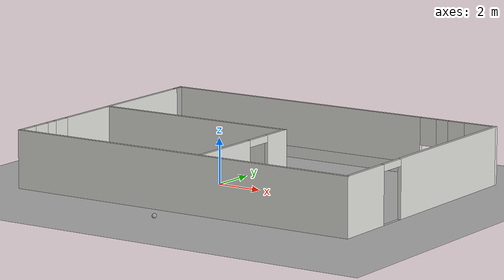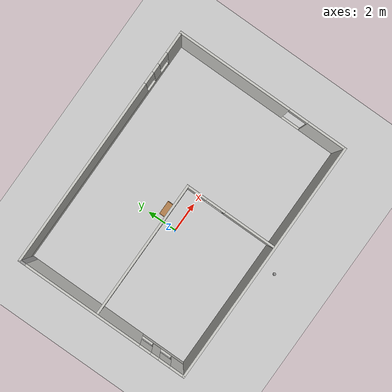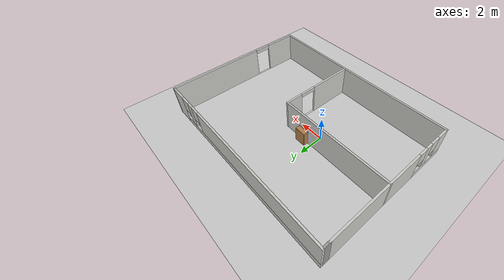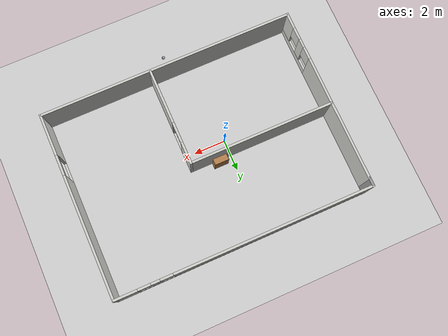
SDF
<sdf version="1.7">
 <world name="default">
  <plugin name="hello" filename="libhello.so"/>
  <light name="sun" type="directional">
   <pose>0 0 10 0 -0 0</pose>
   <diffuse>0.8 0.8 0.8 1</diffuse>
   <specular>0.2 0.2 0.2 1</specular>
   <attenuation>
    <range>1000</range>
    <constant>0.9</constant>
    <linear>0.01</linear>
    <quadratic>0.001</quadratic>
   </attenuation>
   <direction>-0.5 0.1 -0.9</direction>
   <spot><inner_angle>0</inner_angle><outer_angle>0</outer_angle><falloff>0</falloff></spot>
  </light>
  <model name="ground_plane">
   <static>1</static>
   <link name="link">
    <collision name="collision">
     <geometry><plane><normal>0 0 1</normal><size>100 100</size></plane></geometry>
     <surface>
      <contact><collide_bitmask>65535</collide_bitmask></contact>
      <friction><ode><mu>100</mu><mu2>50</mu2></ode></friction>
     </surface>
    </collision>
    <visual name="visual">
     <cast_shadows>0</cast_shadows>
     <geometry><plane><normal>0 0 1</normal><size>100 100</size></plane></geometry>
     <material>
      <script><uri>file://media/materials/scripts/gazebo.material</uri><name>Gazebo/Grey</name></script>
     </material>
    </visual>
   </link>
  </model>
  <gravity>0 0 -9.8</gravity>
  <magnetic_field>6e-06 2.3e-05 -4.2e-05</magnetic_field>
  <atmosphere type="adiabatic"/>
  <physics type="ode">
   <max_step_size>0.001</max_step_size>
   <real_time_factor>1</real_time_factor>
   <real_time_update_rate>1000</real_time_update_rate>
  </physics>
  <scene><ambient>0.4 0.4 0.4 1</ambient><background>0.7 0.7 0.7 1</background><shadows>1</shadows></scene>
  <spherical_coordinates>
   <surface_model>EARTH_WGS84</surface_model>
   <latitude_deg>0</latitude_deg>
   <longitude_deg>0</longitude_deg>
   <elevation>0</elevation>
   <heading_deg>0</heading_deg>
  </spherical_coordinates>
  <model name="building">
   <pose>1.57198 0.564152 0 0 -0 0</pose>
   <link name="Wall_0">
    <pose>-8.05 -0.25 0 0 -0 -1.5708</pose>
    <visual name="Wall_0_Visual_0">
     <pose>-1.60737 0 1.25 0 -0 0</pose>
     <geometry><box><size>8.03525 0.15 2.5</size></box></geometry>
     <material>
      <script><uri>file://media/materials/scripts/gazebo.material</uri><name>Gazebo/CeilingTiled</name></script>
      <ambient>0 0.666667 0 1</ambient>
     </material>
     <meta><layer>0</layer></meta>
    </visual>
    <collision name="Wall_0_Collision_0">
     <geometry><box><size>8.03525 0.15 2.5</size></box></geometry>
     <pose>-1.60737 0 1.25 0 -0 0</pose>
    </collision>
    <visual name="Wall_0_Visual_1">
     <pose>4.01762 0 0.25 0 -0 0</pose>
     <geometry><box><size>3.21475 0.15 0.5</size></box></geometry>
     <material>
      <script><uri>file://media/materials/scripts/gazebo.material</uri><name>Gazebo/CeilingTiled</name></script>
      <ambient>0 0.666667 0 1</ambient>
     </material>
     <meta><layer>0</layer></meta>
    </visual>
    <collision name="Wall_0_Collision_1">
     <geometry><box><size>3.21475 0.15 0.5</size></box></geometry>
     <pose>4.01762 0 0.25 0 -0 0</pose>
    </collision>
    <visual name="Wall_0_Visual_2">
     <pose>3.49236 0 1.5 0 -0 0</pose>
     <geometry><box><size>0.564225 0.15 2</size></box></geometry>
     <material>
      <script><uri>file://media/materials/scripts/gazebo.material</uri><name>Gazebo/CeilingTiled</name></script>
      <ambient>0 0.666667 0 1</ambient>
     </material>
     <meta><layer>0</layer></meta>
    </visual>
    <collision name="Wall_0_Collision_2">
     <geometry><box><size>0.564225 0.15 2</size></box></geometry>
     <pose>3.49236 0 1.5 0 -0 0</pose>
    </collision>
    <visual name="Wall_0_Visual_3">
     <pose>5.09974 0 1.5 0 -0 0</pose>
     <geometry><box><size>1.05052 0.15 2</size></box></geometry>
     <material>
      <script><uri>file://media/materials/scripts/gazebo.material</uri><name>Gazebo/CeilingTiled</name></script>
      <ambient>0 0.666667 0 1</ambient>
     </material>
     <meta><layer>0</layer></meta>
    </visual>
    <collision name="Wall_0_Collision_3">
     <geometry><box><size>1.05052 0.15 2</size></box></geometry>
     <pose>5.09974 0 1.5 0 -0 0</pose>
    </collision>
    <visual name="Wall_0_Visual_4">
     <pose>2.81025 0 1.9 0 -0 0</pose>
     <geometry><box><size>0.8 0.15 1.2</size></box></geometry>
     <material>
      <script><uri>file://media/materials/scripts/gazebo.material</uri><name>Gazebo/CeilingTiled</name></script>
      <ambient>0 0.666667 0 1</ambient>
     </material>
     <meta><layer>0</layer></meta>
    </visual>
    <collision name="Wall_0_Collision_4">
     <geometry><box><size>0.8 0.15 1.2</size></box></geometry>
     <pose>2.81025 0 1.9 0 -0 0</pose>
    </collision>
    <visual name="Wall_0_Visual_5">
     <pose>4.17448 0 1.9 0 -0 0</pose>
     <geometry><box><size>0.8 0.15 1.2</size></box></geometry>
     <material>
      <script><uri>file://media/materials/scripts/gazebo.material</uri><name>Gazebo/CeilingTiled</name></script>
      <ambient>0 0.666667 0 1</ambient>
     </material>
     <meta><layer>0</layer></meta>
    </visual>
    <collision name="Wall_0_Collision_5">
     <geometry><box><size>0.8 0.15 1.2</size></box></geometry>
     <pose>4.17448 0 1.9 0 -0 0</pose>
    </collision>
   </link>
   <link name="Wall_1">
    <collision name="Wall_1_Collision">
     <geometry><box><size>16.25 0.15 2.5</size></box></geometry>
     <pose>0 0 1.25 0 -0 0</pose>
    </collision>
    <visual name="Wall_1_Visual">
     <pose>0 0 1.25 0 -0 0</pose>
     <geometry><box><size>16.25 0.15 2.5</size></box></geometry>
     <material>
      <script><uri>file://media/materials/scripts/gazebo.material</uri><name>Gazebo/CeilingTiled</name></script>
      <ambient>0 0.666667 0 1</ambient>
     </material>
     <meta><layer>0</layer></meta>
    </visual>
    <pose>0 -5.8 0 0 -0 0</pose>
   </link>
   <link name="Wall_2">
    <pose>8.05 -0 0 0 -0 1.5708</pose>
    <visual name="Wall_2_Visual_0">
     <pose>-4.53027 0 1.25 0 -0 0</pose>
     <geometry><box><size>2.68945 0.15 2.5</size></box></geometry>
     <material>
      <script><uri>file://media/materials/scripts/gazebo.material</uri><name>Gazebo/CeilingTiled</name></script>
      <ambient>0 0.666667 0 1</ambient>
     </material>
     <meta><layer>0</layer></meta>
    </visual>
    <collision name="Wall_2_Collision_0">
     <geometry><box><size>2.68945 0.15 2.5</size></box></geometry>
     <pose>-4.53027 0 1.25 0 -0 0</pose>
    </collision>
    <visual name="Wall_2_Visual_1">
     <pose>1.99473 0 1.25 0 -0 0</pose>
     <geometry><box><size>7.76055 0.15 2.5</size></box></geometry>
     <material>
      <script><uri>file://media/materials/scripts/gazebo.material</uri><name>Gazebo/CeilingTiled</name></script>
      <ambient>0 0.666667 0 1</ambient>
     </material>
     <meta><layer>0</layer></meta>
    </visual>
    <collision name="Wall_2_Collision_1">
     <geometry><box><size>7.76055 0.15 2.5</size></box></geometry>
     <pose>1.99473 0 1.25 0 -0 0</pose>
    </collision>
    <visual name="Wall_2_Visual_2">
     <pose>-2.53555 0 0 0 -0 0</pose>
     <geometry><box><size>1.3 0.15 0</size></box></geometry>
     <material>
      <script><uri>file://media/materials/scripts/gazebo.material</uri><name>Gazebo/CeilingTiled</name></script>
      <ambient>0 0.666667 0 1</ambient>
     </material>
     <meta><layer>0</layer></meta>
    </visual>
    <collision name="Wall_2_Collision_2">
     <geometry><box><size>1.3 0.15 0</size></box></geometry>
     <pose>-2.53555 0 0 0 -0 0</pose>
    </collision>
    <visual name="Wall_2_Visual_3">
     <pose>-2.53555 0 2.35 0 -0 0</pose>
     <geometry><box><size>1.3 0.15 0.3</size></box></geometry>
     <material>
      <script><uri>file://media/materials/scripts/gazebo.material</uri><name>Gazebo/CeilingTiled</name></script>
      <ambient>0 0.666667 0 1</ambient>
     </material>
     <meta><layer>0</layer></meta>
    </visual>
    <collision name="Wall_2_Collision_3">
     <geometry><box><size>1.3 0.15 0.3</size></box></geometry>
     <pose>-2.53555 0 2.35 0 -0 0</pose>
    </collision>
   </link>
   <link name="Wall_3">
    <pose>0 5.8 0 0 -0 3.14159</pose>
    <visual name="Wall_3_Visual_0">
     <pose>-7.37345 0 1.25 0 -0 0</pose>
     <geometry><box><size>1.50311 0.15 2.5</size></box></geometry>
     <material>
      <script><uri>file://media/materials/scripts/gazebo.material</uri><name>Gazebo/CeilingTiled</name></script>
      <ambient>0 0.666667 0 1</ambient>
     </material>
     <meta><layer>0</layer></meta>
    </visual>
    <collision name="Wall_3_Collision_0">
     <geometry><box><size>1.50311 0.15 2.5</size></box></geometry>
     <pose>-7.37345 0 1.25 0 -0 0</pose>
    </collision>
    <visual name="Wall_3_Visual_1">
     <pose>0.751554 0 0.25 0 -0 0</pose>
     <geometry><box><size>14.7469 0.15 0.5</size></box></geometry>
     <material>
      <script><uri>file://media/materials/scripts/gazebo.material</uri><name>Gazebo/CeilingTiled</name></script>
      <ambient>0 0.666667 0 1</ambient>
     </material>
     <meta><layer>0</layer></meta>
    </visual>
    <collision name="Wall_3_Collision_1">
     <geometry><box><size>14.7469 0.15 0.5</size></box></geometry>
     <pose>0.751554 0 0.25 0 -0 0</pose>
    </collision>
    <visual name="Wall_3_Visual_2">
     <pose>-5.53978 0 1.5 0 -0 0</pose>
     <geometry><box><size>0.564225 0.15 2</size></box></geometry>
     <material>
      <script><uri>file://media/materials/scripts/gazebo.material</uri><name>Gazebo/CeilingTiled</name></script>
      <ambient>0 0.666667 0 1</ambient>
     </material>
     <meta><layer>0</layer></meta>
    </visual>
    <collision name="Wall_3_Collision_2">
     <geometry><box><size>0.564225 0.15 2</size></box></geometry>
     <pose>-5.53978 0 1.5 0 -0 0</pose>
    </collision>
    <visual name="Wall_3_Visual_3">
     <pose>1.83367 0 1.5 0 -0 0</pose>
     <geometry><box><size>12.5827 0.15 2</size></box></geometry>
     <material>
      <script><uri>file://media/materials/scripts/gazebo.material</uri><name>Gazebo/CeilingTiled</name></script>
      <ambient>0 0.666667 0 1</ambient>
     </material>
     <meta><layer>0</layer></meta>
    </visual>
    <collision name="Wall_3_Collision_3">
     <geometry><box><size>12.5827 0.15 2</size></box></geometry>
     <pose>1.83367 0 1.5 0 -0 0</pose>
    </collision>
    <visual name="Wall_3_Visual_4">
     <pose>-6.22189 0 1.9 0 -0 0</pose>
     <geometry><box><size>0.8 0.15 1.2</size></box></geometry>
     <material>
      <script><uri>file://media/materials/scripts/gazebo.material</uri><name>Gazebo/CeilingTiled</name></script>
      <ambient>0 0.666667 0 1</ambient>
     </material>
     <meta><layer>0</layer></meta>
    </visual>
    <collision name="Wall_3_Collision_4">
     <geometry><box><size>0.8 0.15 1.2</size></box></geometry>
     <pose>-6.22189 0 1.9 0 -0 0</pose>
    </collision>
    <visual name="Wall_3_Visual_5">
     <pose>-4.85767 0 1.9 0 -0 0</pose>
     <geometry><box><size>0.8 0.15 1.2</size></box></geometry>
     <material>
      <script><uri>file://media/materials/scripts/gazebo.material</uri><name>Gazebo/CeilingTiled</name></script>
      <ambient>0 0.666667 0 1</ambient>
     </material>
     <meta><layer>0</layer></meta>
    </visual>
    <collision name="Wall_3_Collision_5">
     <geometry><box><size>0.8 0.15 1.2</size></box></geometry>
     <pose>-4.85767 0 1.9 0 -0 0</pose>
    </collision>
   </link>
   <link name="Wall_4">
    <collision name="Wall_4_Collision">
     <geometry><box><size>0.65 0.15 2.5</size></box></geometry>
     <pose>0 0 1.25 0 -0 0</pose>
    </collision>
    <visual name="Wall_4_Visual">
     <pose>0 0 1.25 0 -0 0</pose>
     <geometry><box><size>0.65 0.15 2.5</size></box></geometry>
     <material>
      <script><uri>file://media/materials/scripts/gazebo.material</uri><name>Gazebo/Grey</name></script>
      <ambient>1 1 1 1</ambient>
     </material>
     <meta><layer>0</layer></meta>
    </visual>
    <pose>-8.05 5.55 0 0 -0 -1.5708</pose>
   </link>
   <link name="Wall_7">
    <collision name="Wall_7_Collision">
     <geometry><box><size>9.25 0.15 2.5</size></box></geometry>
     <pose>0 0 1.25 0 -0 0</pose>
    </collision>
    <visual name="Wall_7_Visual">
     <pose>0 0 1.25 0 -0 0</pose>
     <geometry><box><size>9.25 0.15 2.5</size></box></geometry>
     <material>
      <script><uri>file://media/materials/scripts/gazebo.material</uri><name>Gazebo/CeilingTiled</name></script>
      <ambient>0 0.666667 0 1</ambient>
     </material>
     <meta><layer>0</layer></meta>
    </visual>
    <pose>-3.5 0.367802 0 0 -0 0</pose>
   </link>
   <link name="Wall_8">
    <pose>1.05 -2.6822 0 0 -0 -1.5708</pose>
    <visual name="Wall_8_Visual_0">
     <pose>-2.41557 0 1.25 0 -0 0</pose>
     <geometry><box><size>1.41887 0.15 2.5</size></box></geometry>
     <material>
      <script><uri>file://media/materials/scripts/gazebo.material</uri><name>Gazebo/CeilingTiled</name></script>
      <ambient>0 0.666667 0 1</ambient>
     </material>
     <meta><layer>0</layer></meta>
    </visual>
    <collision name="Wall_8_Collision_0">
     <geometry><box><size>1.41887 0.15 2.5</size></box></geometry>
     <pose>-2.41557 0 1.25 0 -0 0</pose>
    </collision>
    <visual name="Wall_8_Visual_1">
     <pose>1.35943 0 1.25 0 -0 0</pose>
     <geometry><box><size>3.53113 0.15 2.5</size></box></geometry>
     <material>
      <script><uri>file://media/materials/scripts/gazebo.material</uri><name>Gazebo/CeilingTiled</name></script>
      <ambient>0 0.666667 0 1</ambient>
     </material>
     <meta><layer>0</layer></meta>
    </visual>
    <collision name="Wall_8_Collision_1">
     <geometry><box><size>3.53113 0.15 2.5</size></box></geometry>
     <pose>1.35943 0 1.25 0 -0 0</pose>
    </collision>
    <visual name="Wall_8_Visual_2">
     <pose>-1.05613 0 0 0 -0 0</pose>
     <geometry><box><size>1.3 0.15 0</size></box></geometry>
     <material>
      <script><uri>file://media/materials/scripts/gazebo.material</uri><name>Gazebo/CeilingTiled</name></script>
      <ambient>0 0.666667 0 1</ambient>
     </material>
     <meta><layer>0</layer></meta>
    </visual>
    <collision name="Wall_8_Collision_2">
     <geometry><box><size>1.3 0.15 0</size></box></geometry>
     <pose>-1.05613 0 0 0 -0 0</pose>
    </collision>
    <visual name="Wall_8_Visual_3">
     <pose>-1.05613 0 2.35 0 -0 0</pose>
     <geometry><box><size>1.3 0.15 0.3</size></box></geometry>
     <material>
      <script><uri>file://media/materials/scripts/gazebo.material</uri><name>Gazebo/CeilingTiled</name></script>
      <ambient>0 0.666667 0 1</ambient>
     </material>
     <meta><layer>0</layer></meta>
    </visual>
    <collision name="Wall_8_Collision_3">
     <geometry><box><size>1.3 0.15 0.3</size></box></geometry>
     <pose>-1.05613 0 2.35 0 -0 0</pose>
    </collision>
   </link>
   <static>1</static>
  </model>
  <model name="bookshelf">
   <static>1</static>
   <link name="link">
    <inertial><mass>1</mass></inertial>
    <collision name="back">
     <pose>0 0.005 0.6 0 -0 0</pose>
     <geometry><box><size>0.9 0.01 1.2</size></box></geometry>
    </collision>
    <visual name="visual1">
     <pose>0 0.005 0.6 0 -0 0</pose>
     <geometry><box><size>0.9 0.01 1.2</size></box></geometry>
     <material>
      <script><uri>file://media/materials/scripts/gazebo.material</uri><name>Gazebo/Wood</name></script>
     </material>
    </visual>
    <collision name="left_side">
     <pose>0.45 -0.195 0.6 0 -0 0</pose>
     <geometry><box><size>0.02 0.4 1.2</size></box></geometry>
    </collision>
    <visual name="visual2">
     <pose>0.45 -0.195 0.6 0 -0 0</pose>
     <geometry><box><size>0.02 0.4 1.2</size></box></geometry>
     <material>
      <script><uri>file://media/materials/scripts/gazebo.material</uri><name>Gazebo/Wood</name></script>
     </material>
    </visual>
    <collision name="right_side">
     <pose>-0.45 -0.195 0.6 0 -0 0</pose>
     <geometry><box><size>0.02 0.4 1.2</size></box></geometry>
    </collision>
    <visual name="visual3">
     <pose>-0.45 -0.195 0.6 0 -0 0</pose>
     <geometry><box><size>0.02 0.4 1.2</size></box></geometry>
     <material>
      <script><uri>file://media/materials/scripts/gazebo.material</uri><name>Gazebo/Wood</name></script>
     </material>
    </visual>
    <collision name="bottom">
     <pose>0 -0.195 0.03 0 -0 0</pose>
     <geometry><box><size>0.88 0.4 0.06</size></box></geometry>
    </collision>
    <visual name="visual4">
     <pose>0 -0.195 0.03 0 -0 0</pose>
     <geometry><box><size>0.88 0.4 0.06</size></box></geometry>
     <material>
      <script><uri>file://media/materials/scripts/gazebo.material</uri><name>Gazebo/Wood</name></script>
     </material>
    </visual>
    <collision name="top">
     <pose>0 -0.195 1.19 0 -0 0</pose>
     <geometry><box><size>0.88 0.4 0.02</size></box></geometry>
    </collision>
    <visual name="visual5">
     <pose>0 -0.195 1.19 0 -0 0</pose>
     <geometry><box><size>0.88 0.4 0.02</size></box></geometry>
     <material>
      <script><uri>file://media/materials/scripts/gazebo.material</uri><name>Gazebo/Wood</name></script>
     </material>
    </visual>
    <collision name="low_shelf">
     <pose>0 -0.195 0.43 0 -0 0</pose>
     <geometry><box><size>0.88 0.4 0.02</size></box></geometry>
    </collision>
    <visual name="visual6">
     <pose>0 -0.195 0.43 0 -0 0</pose>
     <geometry><box><size>0.88 0.4 0.02</size></box></geometry>
     <material>
      <script><uri>file://media/materials/scripts/gazebo.material</uri><name>Gazebo/Wood</name></script>
     </material>
    </visual>
    <collision name="high_shelf">
     <pose>0 -0.195 0.8 0 -0 0</pose>
     <geometry><box><size>0.88 0.4 0.02</size></box></geometry>
    </collision>
    <visual name="visual7">
     <pose>0 -0.195 0.8 0 -0 0</pose>
     <geometry><box><size>0.88 0.4 0.02</size></box></geometry>
     <material>
      <script><uri>file://media/materials/scripts/gazebo.material</uri><name>Gazebo/Wood</name></script>
     </material>
    </visual>
   </link>
   <pose>0.795856 1.38076 0 0 -0 0</pose>
  </model>
  <model name="my_ball">
   <link name="link_0">
    <inertial>
     <mass>1</mass>
     <inertia><ixx>0.1</ixx><ixy>0</ixy><ixz>0</ixz><iyy>0.1</iyy><iyz>0</iyz><izz>0.1</izz></inertia>
    </inertial>
    <pose>3e-06 3e-06 0 0 -0 0</pose>
    <visual name="visual">
     <geometry><sphere><radius>0.1</radius></sphere></geometry>
     <material>
      <lighting>1</lighting>
      <script><uri>file://media/materials/scripts/gazebo.material</uri><name>Gazebo/Grey</name></script>
      <shader type="pixel"><normal_map>__default__</normal_map></shader>
      <ambient>1 1 1 1</ambient>
      <diffuse>1 1 1 1</diffuse>
      <specular>1 1 1 1</specular>
      <emissive>1 1 1 1</emissive>
     </material>
    </visual>
    <collision name="collision">
     <geometry><sphere><radius>0.1</radius></sphere></geometry>
     <surface>
      <friction>
       <ode><mu>1</mu><mu2>1</mu2><fdir1>0 0 0</fdir1><slip1>0</slip1><slip2>0</slip2></ode>
       <torsional>
        <coefficient>1</coefficient>
        <patch_radius>0</patch_radius>
        <surface_radius>0</surface_radius>
        <use_patch_radius>1</use_patch_radius>
        <ode><slip>0</slip></ode>
       </torsional>
      </friction>
      <bounce><restitution_coefficient>0</restitution_coefficient><threshold>1e+06</threshold></bounce>
      <contact>
       <collide_without_contact>0</collide_without_contact>
       <collide_without_contact_bitmask>1</collide_without_contact_bitmask>
       <collide_bitmask>1</collide_bitmask>
       <ode>
        <soft_cfm>0</soft_cfm>
        <soft_erp>0.2</soft_erp>
        <kp>1e+13</kp>
        <kd>1</kd>
        <max_vel>0.01</max_vel>
        <min_depth>0</min_depth>
       </ode>
       <bullet>
        <split_impulse>1</split_impulse>
        <split_impulse_penetration_threshold>-0.01</split_impulse_penetration_threshold>
        <soft_cfm>0</soft_cfm>
        <soft_erp>0.2</soft_erp>
        <kp>1e+13</kp>
        <kd>1</kd>
       </bullet>
      </contact>
     </surface>
    </collision>
   </link>
   <static>0</static>
   <pose>1.35164 -6.60068 0.1 0 -0 0</pose>
  </model>
 </world>
</sdf>
